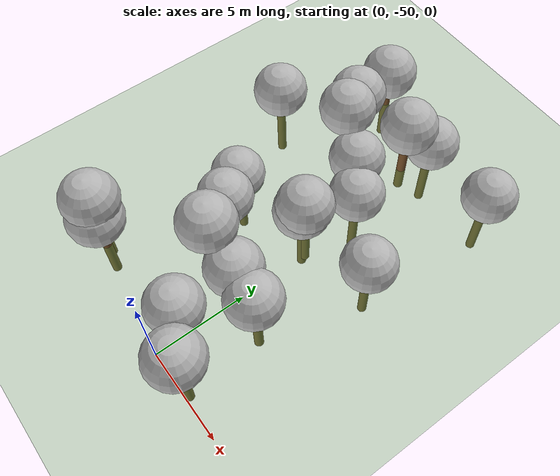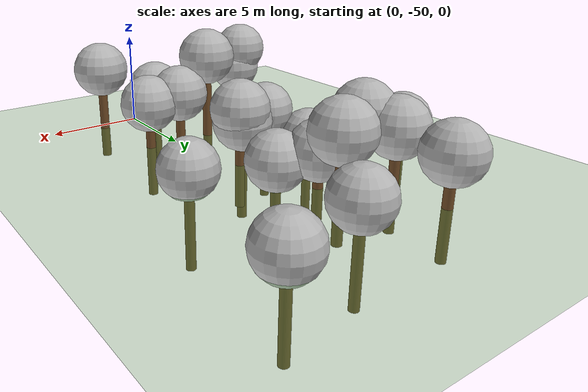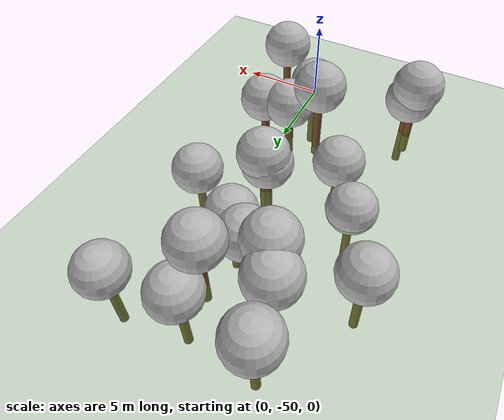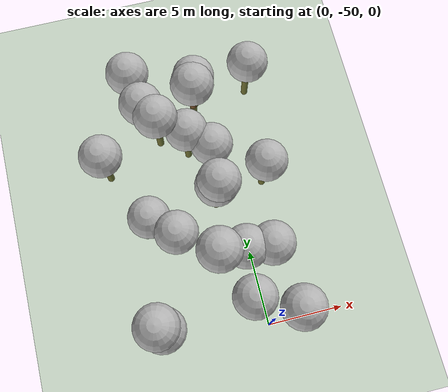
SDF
<sdf version="1.7">
 <world name="default">
  <model name="tree_simple458">
   <static>1</static>
   <link name="link">
    <pose>0 0 0.1 0 -0 0</pose>
    <collision name="collision_trunk">
     <pose>0 0 2 0 -0 0</pose>
     <geometry><cylinder><radius>0.25</radius><length>4</length></cylinder></geometry>
    </collision>
    <collision name="collision_treetop">
     <pose>0 0 5.2 0 -0 0</pose>
     <geometry><sphere><radius>1.5</radius></sphere></geometry>
    </collision>
    <visual name="trunk">
     <pose>0 0 2 0 -0 0</pose>
     <geometry><cylinder><radius>0.25</radius><length>4</length></cylinder></geometry>
     <material>
      <script>
       <uri>model://tree_simple/scripts</uri>
       <uri>model://tree_simple/materials/textures</uri>
       <name>TreeSimple/Trunk</name>
      </script>
     </material>
    </visual>
    <visual name="treetop">
     <pose>0 0 5.2 0 -0 0</pose>
     <geometry><sphere><radius>1.5</radius></sphere></geometry>
     <material>
      <script>
       <uri>model://tree_simple/scripts</uri>
       <uri>model://tree_simple/materials/textures</uri>
       <name>TreeSimple/Treetop</name>
      </script>
     </material>
    </visual>
   </link>
   <pose>2.06614 -49.6676 -1.8399 0 -0 0</pose>
  </model>
  <model name="tree_simple454">
   <static>1</static>
   <link name="link">
    <pose>0 0 0.1 0 -0 0</pose>
    <collision name="collision_trunk">
     <pose>0 0 2 0 -0 0</pose>
     <geometry><cylinder><radius>0.25</radius><length>4</length></cylinder></geometry>
    </collision>
    <collision name="collision_treetop">
     <pose>0 0 5.2 0 -0 0</pose>
     <geometry><sphere><radius>1.5</radius></sphere></geometry>
    </collision>
    <visual name="trunk">
     <pose>0 0 2 0 -0 0</pose>
     <geometry><cylinder><radius>0.25</radius><length>4</length></cylinder></geometry>
     <material>
      <script>
       <uri>model://tree_simple/scripts</uri>
       <uri>model://tree_simple/materials/textures</uri>
       <name>TreeSimple/Trunk</name>
      </script>
     </material>
    </visual>
    <visual name="treetop">
     <pose>0 0 5.2 0 -0 0</pose>
     <geometry><sphere><radius>1.5</radius></sphere></geometry>
     <material>
      <script>
       <uri>model://tree_simple/scripts</uri>
       <uri>model://tree_simple/materials/textures</uri>
       <name>TreeSimple/Treetop</name>
      </script>
     </material>
    </visual>
   </link>
   <pose>-1.19782 -40.4261 -3.09497 0 -0 0</pose>
  </model>
  <model name="tree_simple447">
   <static>1</static>
   <link name="link">
    <pose>0 0 0.1 0 -0 0</pose>
    <collision name="collision_trunk">
     <pose>0 0 2 0 -0 0</pose>
     <geometry><cylinder><radius>0.25</radius><length>4</length></cylinder></geometry>
    </collision>
    <collision name="collision_treetop">
     <pose>0 0 5.2 0 -0 0</pose>
     <geometry><sphere><radius>1.5</radius></sphere></geometry>
    </collision>
    <visual name="trunk">
     <pose>0 0 2 0 -0 0</pose>
     <geometry><cylinder><radius>0.25</radius><length>4</length></cylinder></geometry>
     <material>
      <script>
       <uri>model://tree_simple/scripts</uri>
       <uri>model://tree_simple/materials/textures</uri>
       <name>TreeSimple/Trunk</name>
      </script>
     </material>
    </visual>
    <visual name="treetop">
     <pose>0 0 5.2 0 -0 0</pose>
     <geometry><sphere><radius>1.5</radius></sphere></geometry>
     <material>
      <script>
       <uri>model://tree_simple/scripts</uri>
       <uri>model://tree_simple/materials/textures</uri>
       <name>TreeSimple/Treetop</name>
      </script>
     </material>
    </visual>
   </link>
   <pose>-6.15097 -41.0423 -5.00073 0 -0 0</pose>
  </model>
  <model name="tree_simple368">
   <static>1</static>
   <link name="link">
    <pose>0 0 0.1 0 -0 0</pose>
    <collision name="collision_trunk">
     <pose>0 0 2 0 -0 0</pose>
     <geometry><cylinder><radius>0.25</radius><length>4</length></cylinder></geometry>
    </collision>
    <collision name="collision_treetop">
     <pose>0 0 5.2 0 -0 0</pose>
     <geometry><sphere><radius>1.5</radius></sphere></geometry>
    </collision>
    <visual name="trunk">
     <pose>0 0 2 0 -0 0</pose>
     <geometry><cylinder><radius>0.25</radius><length>4</length></cylinder></geometry>
     <material>
      <script>
       <uri>model://tree_simple/scripts</uri>
       <uri>model://tree_simple/materials/textures</uri>
       <name>TreeSimple/Trunk</name>
      </script>
     </material>
    </visual>
    <visual name="treetop">
     <pose>0 0 5.2 0 -0 0</pose>
     <geometry><sphere><radius>1.5</radius></sphere></geometry>
     <material>
      <script>
       <uri>model://tree_simple/scripts</uri>
       <uri>model://tree_simple/materials/textures</uri>
       <name>TreeSimple/Treetop</name>
      </script>
     </material>
    </visual>
   </link>
   <pose>-2.27491 -35.9753 -3.47139 0 -0 0</pose>
  </model>
  <model name="tree_simple344">
   <static>1</static>
   <link name="link">
    <pose>0 0 0.1 0 -0 0</pose>
    <collision name="collision_trunk">
     <pose>0 0 2 0 -0 0</pose>
     <geometry><cylinder><radius>0.25</radius><length>4</length></cylinder></geometry>
    </collision>
    <collision name="collision_treetop">
     <pose>0 0 5.2 0 -0 0</pose>
     <geometry><sphere><radius>1.5</radius></sphere></geometry>
    </collision>
    <visual name="trunk">
     <pose>0 0 2 0 -0 0</pose>
     <geometry><cylinder><radius>0.25</radius><length>4</length></cylinder></geometry>
     <material>
      <script>
       <uri>model://tree_simple/scripts</uri>
       <uri>model://tree_simple/materials/textures</uri>
       <name>TreeSimple/Trunk</name>
      </script>
     </material>
    </visual>
    <visual name="treetop">
     <pose>0 0 5.2 0 -0 0</pose>
     <geometry><sphere><radius>1.5</radius></sphere></geometry>
     <material>
      <script>
       <uri>model://tree_simple/scripts</uri>
       <uri>model://tree_simple/materials/textures</uri>
       <name>TreeSimple/Treetop</name>
      </script>
     </material>
    </visual>
   </link>
   <pose>-1.01406 -40.3567 -2.41123 0 -0 0</pose>
  </model>
  <model name="tree_simple334">
   <static>1</static>
   <link name="link">
    <pose>0 0 0.1 0 -0 0</pose>
    <collision name="collision_trunk">
     <pose>0 0 2 0 -0 0</pose>
     <geometry><cylinder><radius>0.25</radius><length>4</length></cylinder></geometry>
    </collision>
    <collision name="collision_treetop">
     <pose>0 0 5.2 0 -0 0</pose>
     <geometry><sphere><radius>1.5</radius></sphere></geometry>
    </collision>
    <visual name="trunk">
     <pose>0 0 2 0 -0 0</pose>
     <geometry><cylinder><radius>0.25</radius><length>4</length></cylinder></geometry>
     <material>
      <script>
       <uri>model://tree_simple/scripts</uri>
       <uri>model://tree_simple/materials/textures</uri>
       <name>TreeSimple/Trunk</name>
      </script>
     </material>
    </visual>
    <visual name="treetop">
     <pose>0 0 5.2 0 -0 0</pose>
     <geometry><sphere><radius>1.5</radius></sphere></geometry>
     <material>
      <script>
       <uri>model://tree_simple/scripts</uri>
       <uri>model://tree_simple/materials/textures</uri>
       <name>TreeSimple/Treetop</name>
      </script>
     </material>
    </visual>
   </link>
   <pose>-4.15813 -35.2036 -1.76646 0 -0 0</pose>
  </model>
  <model name="tree_simple285">
   <static>1</static>
   <link name="link">
    <pose>0 0 0.1 0 -0 0</pose>
    <collision name="collision_trunk">
     <pose>0 0 2 0 -0 0</pose>
     <geometry><cylinder><radius>0.25</radius><length>4</length></cylinder></geometry>
    </collision>
    <collision name="collision_treetop">
     <pose>0 0 5.2 0 -0 0</pose>
     <geometry><sphere><radius>1.5</radius></sphere></geometry>
    </collision>
    <visual name="trunk">
     <pose>0 0 2 0 -0 0</pose>
     <geometry><cylinder><radius>0.25</radius><length>4</length></cylinder></geometry>
     <material>
      <script>
       <uri>model://tree_simple/scripts</uri>
       <uri>model://tree_simple/materials/textures</uri>
       <name>TreeSimple/Trunk</name>
      </script>
     </material>
    </visual>
    <visual name="treetop">
     <pose>0 0 5.2 0 -0 0</pose>
     <geometry><sphere><radius>1.5</radius></sphere></geometry>
     <material>
      <script>
       <uri>model://tree_simple/scripts</uri>
       <uri>model://tree_simple/materials/textures</uri>
       <name>TreeSimple/Treetop</name>
      </script>
     </material>
    </visual>
   </link>
   <pose>-0.758588 -37.1758 -4.0195 0 -0 0</pose>
  </model>
  <model name="tree_simple223">
   <static>1</static>
   <link name="link">
    <pose>0 0 0.1 0 -0 0</pose>
    <collision name="collision_trunk">
     <pose>0 0 2 0 -0 0</pose>
     <geometry><cylinder><radius>0.25</radius><length>4</length></cylinder></geometry>
    </collision>
    <collision name="collision_treetop">
     <pose>0 0 5.2 0 -0 0</pose>
     <geometry><sphere><radius>1.5</radius></sphere></geometry>
    </collision>
    <visual name="trunk">
     <pose>0 0 2 0 -0 0</pose>
     <geometry><cylinder><radius>0.25</radius><length>4</length></cylinder></geometry>
     <material>
      <script>
       <uri>model://tree_simple/scripts</uri>
       <uri>model://tree_simple/materials/textures</uri>
       <name>TreeSimple/Trunk</name>
      </script>
     </material>
    </visual>
    <visual name="treetop">
     <pose>0 0 5.2 0 -0 0</pose>
     <geometry><sphere><radius>1.5</radius></sphere></geometry>
     <material>
      <script>
       <uri>model://tree_simple/scripts</uri>
       <uri>model://tree_simple/materials/textures</uri>
       <name>TreeSimple/Treetop</name>
      </script>
     </material>
    </visual>
   </link>
   <pose>-0.83143 -31.9084 -3.9007 0 -0 0</pose>
  </model>
  <model name="tree_simple142">
   <static>1</static>
   <link name="link">
    <pose>0 0 0.1 0 -0 0</pose>
    <collision name="collision_trunk">
     <pose>0 0 2 0 -0 0</pose>
     <geometry><cylinder><radius>0.25</radius><length>4</length></cylinder></geometry>
    </collision>
    <collision name="collision_treetop">
     <pose>0 0 5.2 0 -0 0</pose>
     <geometry><sphere><radius>1.5</radius></sphere></geometry>
    </collision>
    <visual name="trunk">
     <pose>0 0 2 0 -0 0</pose>
     <geometry><cylinder><radius>0.25</radius><length>4</length></cylinder></geometry>
     <material>
      <script>
       <uri>model://tree_simple/scripts</uri>
       <uri>model://tree_simple/materials/textures</uri>
       <name>TreeSimple/Trunk</name>
      </script>
     </material>
    </visual>
    <visual name="treetop">
     <pose>0 0 5.2 0 -0 0</pose>
     <geometry><sphere><radius>1.5</radius></sphere></geometry>
     <material>
      <script>
       <uri>model://tree_simple/scripts</uri>
       <uri>model://tree_simple/materials/textures</uri>
       <name>TreeSimple/Treetop</name>
      </script>
     </material>
    </visual>
   </link>
   <pose>2.70228 -39.1926 -4.27594 0 -0 0</pose>
  </model>
  <model name="tree_simple126">
   <static>1</static>
   <link name="link">
    <pose>0 0 0.1 0 -0 0</pose>
    <collision name="collision_trunk">
     <pose>0 0 2 0 -0 0</pose>
     <geometry><cylinder><radius>0.25</radius><length>4</length></cylinder></geometry>
    </collision>
    <collision name="collision_treetop">
     <pose>0 0 5.2 0 -0 0</pose>
     <geometry><sphere><radius>1.5</radius></sphere></geometry>
    </collision>
    <visual name="trunk">
     <pose>0 0 2 0 -0 0</pose>
     <geometry><cylinder><radius>0.25</radius><length>4</length></cylinder></geometry>
     <material>
      <script>
       <uri>model://tree_simple/scripts</uri>
       <uri>model://tree_simple/materials/textures</uri>
       <name>TreeSimple/Trunk</name>
      </script>
     </material>
    </visual>
    <visual name="treetop">
     <pose>0 0 5.2 0 -0 0</pose>
     <geometry><sphere><radius>1.5</radius></sphere></geometry>
     <material>
      <script>
       <uri>model://tree_simple/scripts</uri>
       <uri>model://tree_simple/materials/textures</uri>
       <name>TreeSimple/Treetop</name>
      </script>
     </material>
    </visual>
   </link>
   <pose>-8.40128 -36.4846 -3.38265 0 -0 0</pose>
  </model>
  <model name="tree_simple114">
   <static>1</static>
   <link name="link">
    <pose>0 0 0.1 0 -0 0</pose>
    <collision name="collision_trunk">
     <pose>0 0 2 0 -0 0</pose>
     <geometry><cylinder><radius>0.25</radius><length>4</length></cylinder></geometry>
    </collision>
    <collision name="collision_treetop">
     <pose>0 0 5.2 0 -0 0</pose>
     <geometry><sphere><radius>1.5</radius></sphere></geometry>
    </collision>
    <visual name="trunk">
     <pose>0 0 2 0 -0 0</pose>
     <geometry><cylinder><radius>0.25</radius><length>4</length></cylinder></geometry>
     <material>
      <script>
       <uri>model://tree_simple/scripts</uri>
       <uri>model://tree_simple/materials/textures</uri>
       <name>TreeSimple/Trunk</name>
      </script>
     </material>
    </visual>
    <visual name="treetop">
     <pose>0 0 5.2 0 -0 0</pose>
     <geometry><sphere><radius>1.5</radius></sphere></geometry>
     <material>
      <script>
       <uri>model://tree_simple/scripts</uri>
       <uri>model://tree_simple/materials/textures</uri>
       <name>TreeSimple/Treetop</name>
      </script>
     </material>
    </visual>
   </link>
   <pose>-2.17758 -45.1287 -0.811668 0 -0 0</pose>
  </model>
  <model name="tree_simple108">
   <static>1</static>
   <link name="link">
    <pose>0 0 0.1 0 -0 0</pose>
    <collision name="collision_trunk">
     <pose>0 0 2 0 -0 0</pose>
     <geometry><cylinder><radius>0.25</radius><length>4</length></cylinder></geometry>
    </collision>
    <collision name="collision_treetop">
     <pose>0 0 5.2 0 -0 0</pose>
     <geometry><sphere><radius>1.5</radius></sphere></geometry>
    </collision>
    <visual name="trunk">
     <pose>0 0 2 0 -0 0</pose>
     <geometry><cylinder><radius>0.25</radius><length>4</length></cylinder></geometry>
     <material>
      <script>
       <uri>model://tree_simple/scripts</uri>
       <uri>model://tree_simple/materials/textures</uri>
       <name>TreeSimple/Trunk</name>
      </script>
     </material>
    </visual>
    <visual name="treetop">
     <pose>0 0 5.2 0 -0 0</pose>
     <geometry><sphere><radius>1.5</radius></sphere></geometry>
     <material>
      <script>
       <uri>model://tree_simple/scripts</uri>
       <uri>model://tree_simple/materials/textures</uri>
       <name>TreeSimple/Treetop</name>
      </script>
     </material>
    </visual>
   </link>
   <pose>1.42932 -45.166 -2.87886 0 -0 0</pose>
  </model>
  <model name="tree_simple107">
   <static>1</static>
   <link name="link">
    <pose>0 0 0.1 0 -0 0</pose>
    <collision name="collision_trunk">
     <pose>0 0 2 0 -0 0</pose>
     <geometry><cylinder><radius>0.25</radius><length>4</length></cylinder></geometry>
    </collision>
    <collision name="collision_treetop">
     <pose>0 0 5.2 0 -0 0</pose>
     <geometry><sphere><radius>1.5</radius></sphere></geometry>
    </collision>
    <visual name="trunk">
     <pose>0 0 2 0 -0 0</pose>
     <geometry><cylinder><radius>0.25</radius><length>4</length></cylinder></geometry>
     <material>
      <script>
       <uri>model://tree_simple/scripts</uri>
       <uri>model://tree_simple/materials/textures</uri>
       <name>TreeSimple/Trunk</name>
      </script>
     </material>
    </visual>
    <visual name="treetop">
     <pose>0 0 5.2 0 -0 0</pose>
     <geometry><sphere><radius>1.5</radius></sphere></geometry>
     <material>
      <script>
       <uri>model://tree_simple/scripts</uri>
       <uri>model://tree_simple/materials/textures</uri>
       <name>TreeSimple/Treetop</name>
      </script>
     </material>
    </visual>
   </link>
   <pose>-1.23057 -33.5426 -1.65936 0 -0 0</pose>
  </model>
  <model name="tree_simple90">
   <static>1</static>
   <link name="link">
    <pose>0 0 0.1 0 -0 0</pose>
    <collision name="collision_trunk">
     <pose>0 0 2 0 -0 0</pose>
     <geometry><cylinder><radius>0.25</radius><length>4</length></cylinder></geometry>
    </collision>
    <collision name="collision_treetop">
     <pose>0 0 5.2 0 -0 0</pose>
     <geometry><sphere><radius>1.5</radius></sphere></geometry>
    </collision>
    <visual name="trunk">
     <pose>0 0 2 0 -0 0</pose>
     <geometry><cylinder><radius>0.25</radius><length>4</length></cylinder></geometry>
     <material>
      <script>
       <uri>model://tree_simple/scripts</uri>
       <uri>model://tree_simple/materials/textures</uri>
       <name>TreeSimple/Trunk</name>
      </script>
     </material>
    </visual>
    <visual name="treetop">
     <pose>0 0 5.2 0 -0 0</pose>
     <geometry><sphere><radius>1.5</radius></sphere></geometry>
     <material>
      <script>
       <uri>model://tree_simple/scripts</uri>
       <uri>model://tree_simple/materials/textures</uri>
       <name>TreeSimple/Treetop</name>
      </script>
     </material>
    </visual>
   </link>
   <pose>-7.02065 -48.7132 -1.53002 0 -0 0</pose>
  </model>
  <model name="tree_simple87">
   <static>1</static>
   <link name="link">
    <pose>0 0 0.1 0 -0 0</pose>
    <collision name="collision_trunk">
     <pose>0 0 2 0 -0 0</pose>
     <geometry><cylinder><radius>0.25</radius><length>4</length></cylinder></geometry>
    </collision>
    <collision name="collision_treetop">
     <pose>0 0 5.2 0 -0 0</pose>
     <geometry><sphere><radius>1.5</radius></sphere></geometry>
    </collision>
    <visual name="trunk">
     <pose>0 0 2 0 -0 0</pose>
     <geometry><cylinder><radius>0.25</radius><length>4</length></cylinder></geometry>
     <material>
      <script>
       <uri>model://tree_simple/scripts</uri>
       <uri>model://tree_simple/materials/textures</uri>
       <name>TreeSimple/Trunk</name>
      </script>
     </material>
    </visual>
    <visual name="treetop">
     <pose>0 0 5.2 0 -0 0</pose>
     <geometry><sphere><radius>1.5</radius></sphere></geometry>
     <material>
      <script>
       <uri>model://tree_simple/scripts</uri>
       <uri>model://tree_simple/materials/textures</uri>
       <name>TreeSimple/Treetop</name>
      </script>
     </material>
    </visual>
   </link>
   <pose>-0.35586 -45.0259 -2.58239 0 -0 0</pose>
  </model>
  <model name="tree_simple58">
   <static>1</static>
   <link name="link">
    <pose>0 0 0.1 0 -0 0</pose>
    <collision name="collision_trunk">
     <pose>0 0 2 0 -0 0</pose>
     <geometry><cylinder><radius>0.25</radius><length>4</length></cylinder></geometry>
    </collision>
    <collision name="collision_treetop">
     <pose>0 0 5.2 0 -0 0</pose>
     <geometry><sphere><radius>1.5</radius></sphere></geometry>
    </collision>
    <visual name="trunk">
     <pose>0 0 2 0 -0 0</pose>
     <geometry><cylinder><radius>0.25</radius><length>4</length></cylinder></geometry>
     <material>
      <script>
       <uri>model://tree_simple/scripts</uri>
       <uri>model://tree_simple/materials/textures</uri>
       <name>TreeSimple/Trunk</name>
      </script>
     </material>
    </visual>
    <visual name="treetop">
     <pose>0 0 5.2 0 -0 0</pose>
     <geometry><sphere><radius>1.5</radius></sphere></geometry>
     <material>
      <script>
       <uri>model://tree_simple/scripts</uri>
       <uri>model://tree_simple/materials/textures</uri>
       <name>TreeSimple/Treetop</name>
      </script>
     </material>
    </visual>
   </link>
   <pose>-4.91492 -33.8246 -2.31481 0 -0 0</pose>
  </model>
  <model name="tree_simple51">
   <static>1</static>
   <link name="link">
    <pose>0 0 0.1 0 -0 0</pose>
    <collision name="collision_trunk">
     <pose>0 0 2 0 -0 0</pose>
     <geometry><cylinder><radius>0.25</radius><length>4</length></cylinder></geometry>
    </collision>
    <collision name="collision_treetop">
     <pose>0 0 5.2 0 -0 0</pose>
     <geometry><sphere><radius>1.5</radius></sphere></geometry>
    </collision>
    <visual name="trunk">
     <pose>0 0 2 0 -0 0</pose>
     <geometry><cylinder><radius>0.25</radius><length>4</length></cylinder></geometry>
     <material>
      <script>
       <uri>model://tree_simple/scripts</uri>
       <uri>model://tree_simple/materials/textures</uri>
       <name>TreeSimple/Trunk</name>
      </script>
     </material>
    </visual>
    <visual name="treetop">
     <pose>0 0 5.2 0 -0 0</pose>
     <geometry><sphere><radius>1.5</radius></sphere></geometry>
     <material>
      <script>
       <uri>model://tree_simple/scripts</uri>
       <uri>model://tree_simple/materials/textures</uri>
       <name>TreeSimple/Treetop</name>
      </script>
     </material>
    </visual>
   </link>
   <pose>-0.589458 -48.2328 -3.007 0 -0 0</pose>
  </model>
  <model name="tree_simple39">
   <static>1</static>
   <link name="link">
    <pose>0 0 0.1 0 -0 0</pose>
    <collision name="collision_trunk">
     <pose>0 0 2 0 -0 0</pose>
     <geometry><cylinder><radius>0.25</radius><length>4</length></cylinder></geometry>
    </collision>
    <collision name="collision_treetop">
     <pose>0 0 5.2 0 -0 0</pose>
     <geometry><sphere><radius>1.5</radius></sphere></geometry>
    </collision>
    <visual name="trunk">
     <pose>0 0 2 0 -0 0</pose>
     <geometry><cylinder><radius>0.25</radius><length>4</length></cylinder></geometry>
     <material>
      <script>
       <uri>model://tree_simple/scripts</uri>
       <uri>model://tree_simple/materials/textures</uri>
       <name>TreeSimple/Trunk</name>
      </script>
     </material>
    </visual>
    <visual name="treetop">
     <pose>0 0 5.2 0 -0 0</pose>
     <geometry><sphere><radius>1.5</radius></sphere></geometry>
     <material>
      <script>
       <uri>model://tree_simple/scripts</uri>
       <uri>model://tree_simple/materials/textures</uri>
       <name>TreeSimple/Treetop</name>
      </script>
     </material>
    </visual>
   </link>
   <pose>3.31872 -31.4824 -4.45644 0 -0 0</pose>
  </model>
  <model name="tree_simple23">
   <static>1</static>
   <link name="link">
    <pose>0 0 0.1 0 -0 0</pose>
    <collision name="collision_trunk">
     <pose>0 0 2 0 -0 0</pose>
     <geometry><cylinder><radius>0.25</radius><length>4</length></cylinder></geometry>
    </collision>
    <collision name="collision_treetop">
     <pose>0 0 5.2 0 -0 0</pose>
     <geometry><sphere><radius>1.5</radius></sphere></geometry>
    </collision>
    <visual name="trunk">
     <pose>0 0 2 0 -0 0</pose>
     <geometry><cylinder><radius>0.25</radius><length>4</length></cylinder></geometry>
     <material>
      <script>
       <uri>model://tree_simple/scripts</uri>
       <uri>model://tree_simple/materials/textures</uri>
       <name>TreeSimple/Trunk</name>
      </script>
     </material>
    </visual>
    <visual name="treetop">
     <pose>0 0 5.2 0 -0 0</pose>
     <geometry><sphere><radius>1.5</radius></sphere></geometry>
     <material>
      <script>
       <uri>model://tree_simple/scripts</uri>
       <uri>model://tree_simple/materials/textures</uri>
       <name>TreeSimple/Treetop</name>
      </script>
     </material>
    </visual>
   </link>
   <pose>-6.72422 -48.8953 -2.69913 0 -0 0</pose>
  </model>
  <model name="tree_simple10">
   <static>1</static>
   <link name="link">
    <pose>0 0 0.1 0 -0 0</pose>
    <collision name="collision_trunk">
     <pose>0 0 2 0 -0 0</pose>
     <geometry><cylinder><radius>0.25</radius><length>4</length></cylinder></geometry>
    </collision>
    <collision name="collision_treetop">
     <pose>0 0 5.2 0 -0 0</pose>
     <geometry><sphere><radius>1.5</radius></sphere></geometry>
    </collision>
    <visual name="trunk">
     <pose>0 0 2 0 -0 0</pose>
     <geometry><cylinder><radius>0.25</radius><length>4</length></cylinder></geometry>
     <material>
      <script>
       <uri>model://tree_simple/scripts</uri>
       <uri>model://tree_simple/materials/textures</uri>
       <name>TreeSimple/Trunk</name>
      </script>
     </material>
    </visual>
    <visual name="treetop">
     <pose>0 0 5.2 0 -0 0</pose>
     <geometry><sphere><radius>1.5</radius></sphere></geometry>
     <material>
      <script>
       <uri>model://tree_simple/scripts</uri>
       <uri>model://tree_simple/materials/textures</uri>
       <name>TreeSimple/Treetop</name>
      </script>
     </material>
    </visual>
   </link>
   <pose>-5.37127 -31.1523 -2.78987 0 -0 0</pose>
  </model>
  <model name="tree_simple4">
   <static>1</static>
   <link name="link">
    <pose>0 0 0.1 0 -0 0</pose>
    <collision name="collision_trunk">
     <pose>0 0 2 0 -0 0</pose>
     <geometry><cylinder><radius>0.25</radius><length>4</length></cylinder></geometry>
    </collision>
    <collision name="collision_treetop">
     <pose>0 0 5.2 0 -0 0</pose>
     <geometry><sphere><radius>1.5</radius></sphere></geometry>
    </collision>
    <visual name="trunk">
     <pose>0 0 2 0 -0 0</pose>
     <geometry><cylinder><radius>0.25</radius><length>4</length></cylinder></geometry>
     <material>
      <script>
       <uri>model://tree_simple/scripts</uri>
       <uri>model://tree_simple/materials/textures</uri>
       <name>TreeSimple/Trunk</name>
      </script>
     </material>
    </visual>
    <visual name="treetop">
     <pose>0 0 5.2 0 -0 0</pose>
     <geometry><sphere><radius>1.5</radius></sphere></geometry>
     <material>
      <script>
       <uri>model://tree_simple/scripts</uri>
       <uri>model://tree_simple/materials/textures</uri>
       <name>TreeSimple/Treetop</name>
      </script>
     </material>
    </visual>
   </link>
   <pose>-4.53333 -42.8142 -3.65563 0 -0 0</pose>
  </model>
  <model name="ground_plane">
   <static>1</static>
   <link name="link">
    <collision name="collision">
     <geometry><plane><normal>0 0 1</normal><size>250 250</size></plane></geometry>
     <surface><friction><ode><mu>1</mu><mu2>1</mu2></ode></friction></surface>
    </collision>
    <visual name="grass">
     <cast_shadows>0</cast_shadows>
     <geometry><plane><normal>0 0 1</normal><size>150 250</size></plane></geometry>
     <material>
      <script><uri>file://media/materials/scripts/Gazebo.material</uri><name>Gazebo/Grass</name></script>
     </material>
    </visual>
   </link>
  </model>
 </world>
</sdf>
